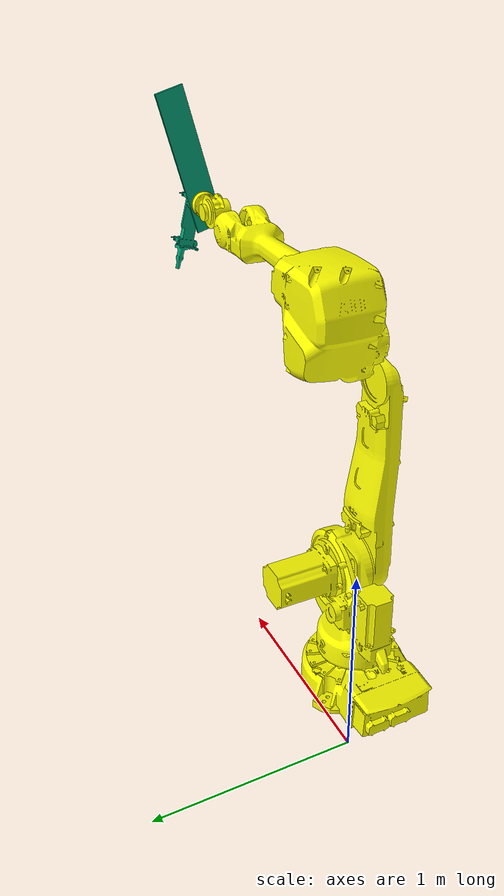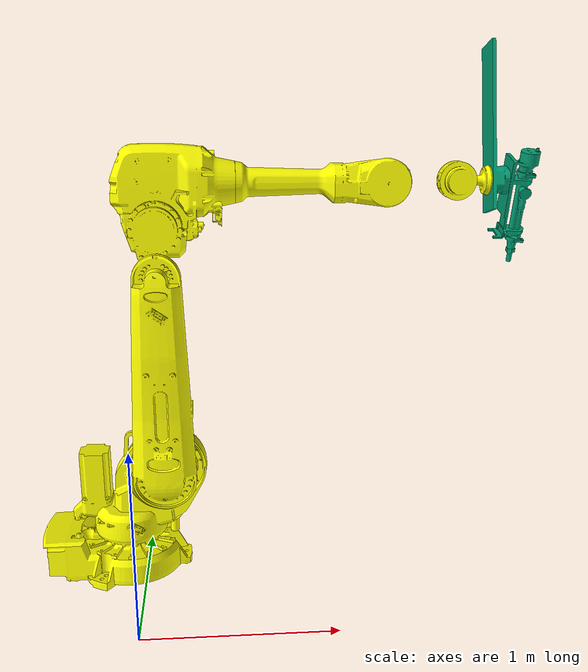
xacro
<?xml version="1.0"?>
<robot xmlns:xacro="http://www.ros.org/wiki/xacro" name="elizabeth">
    <xacro:arg name="initial_positions_file" default="initial_positions.yaml" />

    <!-- Import elizabeth urdf file -->
    <xacro:include filename="$(find elizabeth_description)/urdf/elizabeth.xacro" />

    <!-- Import control_xacro -->
    <xacro:include filename="elizabeth.ros2_control.xacro" />

    <xacro:elizabeth_ros2_control name="FakeSystem" initial_positions_file="$(arg initial_positions_file)"/>

</robot>

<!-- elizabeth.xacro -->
<robot name="elizabeth" xmlns:xacro="http://ros.org/wiki/xacro">

  <xacro:arg name="rws_ip" default="None"/>
  <xacro:arg name="rws_port" default="80"/>

  <xacro:include filename="$(find abb_irb4600_support)/urdf/irb4600_40_255.xacro"/>
  <xacro:include filename="$(find elizabeth_description)/urdf/t25_incl_all.xacro"/>

  <link name="base_footprint"/>
  <joint name="base_footprint_joint" type="fixed">
    <parent link="base_footprint"/>
    <child link="base_link"/>
    <origin xyz="0 0 0.45" rpy="0 0 0"/>
  </joint>
</robot>

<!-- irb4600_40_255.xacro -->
<robot name="abb_irb4600_40_255" xmlns:xacro="http://ros.org/wiki/xacro">
  <xacro:include filename="$(find abb_irb4600_support)/urdf/irb4600_40_255_macro.xacro"/>
  <xacro:abb_irb4600_40_255 prefix=""/>
</robot>

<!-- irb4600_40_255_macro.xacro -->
<robot xmlns:xacro="http://ros.org/wiki/xacro">
  <xacro:macro name="abb_irb4600_40_255" params="prefix">
    <xacro:include filename="$(find abb_resources)/urdf/common_materials.xacro"/>

    <!-- link list -->
    <link name="${prefix}base_link">
      <collision name="collision">
        <geometry>
          <mesh filename="package://abb_irb4600_support/meshes/irb4600/collision/base_link.stl"/>
        </geometry>
        <xacro:material_abb_white/>
      </collision>
      <visual name="visual">
        <geometry>
          <mesh filename="package://abb_irb4600_support/meshes/irb4600/visual/base_link.dae"/>
        </geometry>
        <xacro:material_abb_white/>
        <material name="yellow">
          <color rgba="1 1 0 1"/>
        </material>
      </visual>
    </link>
    <link name="${prefix}link_1">
      <collision name="collision">
        <geometry>
          <mesh filename="package://abb_irb4600_support/meshes/irb4600/collision/link_1.stl"/>
        </geometry>
        <xacro:material_abb_white/>
      </collision>
      <visual name="visual">
        <geometry>
          <mesh filename="package://abb_irb4600_support/meshes/irb4600/visual/link_1.dae"/>
        </geometry>
        <xacro:material_abb_white/>
        <material name="yellow"/>
      </visual>
    </link>
    <link name="${prefix}link_2">
      <collision name="collision">
        <geometry>
          <mesh filename="package://abb_irb4600_support/meshes/irb4600_40_255/collision/link_2.stl"/>
        </geometry>
        <xacro:material_abb_white/>
      </collision>
      <visual name="visual">
        <geometry>
          <mesh filename="package://abb_irb4600_support/meshes/irb4600_40_255/visual/link_2.dae"/>
        </geometry>
        <xacro:material_abb_white/>
        <material name="yellow"/>
      </visual>
    </link>
    <link name="${prefix}link_3">
      <collision name="collision">
        <geometry>
          <mesh filename="package://abb_irb4600_support/meshes/irb4600_40_255/collision/link_3.stl"/>
        </geometry>
        <xacro:material_abb_white/>
      </collision>
      <visual name="visual">
        <geometry>
          <mesh filename="package://abb_irb4600_support/meshes/irb4600_40_255/visual/link_3.dae"/>
        </geometry>
        <xacro:material_abb_white/>
        <material name="yellow"/>
      </visual>
    </link>
    <link name="${prefix}link_4">
      <collision name="collision">
        <geometry>
          <mesh filename="package://abb_irb4600_support/meshes/irb4600_40_255/collision/link_4.stl"/>
        </geometry>
        <xacro:material_abb_white/>
      </collision>
      <visual name="visual">
        <geometry>
          <mesh filename="package://abb_irb4600_support/meshes/irb4600_40_255/visual/link_4.dae"/>
        </geometry>
        <xacro:material_abb_white/>
        <material name="yellow"/>
      </visual>
    </link>
    <link name="${prefix}link_5">
      <collision name="collision">
        <geometry>
          <mesh filename="package://abb_irb4600_support/meshes/irb4600_40_255/collision/link_5.stl"/>
        </geometry>
        <xacro:material_abb_white/>
      </collision>
      <visual name="visual">
        <geometry>
          <mesh filename="package://abb_irb4600_support/meshes/irb4600_40_255/visual/link_5.dae"/>
        </geometry>
        <xacro:material_abb_white/>
        <material name="yellow"/>
      </visual>
    </link>
    <link name="${prefix}link_6">
      <collision name="collision">
        <geometry>
          <mesh filename="package://abb_irb4600_support/meshes/irb4600_40_255/collision/link_6.stl"/>
        </geometry>
        <xacro:material_abb_white/>
      </collision>
      <visual name="visual">
        <geometry>
          <mesh filename="package://abb_irb4600_support/meshes/irb4600_40_255/visual/link_6.dae"/>
        </geometry>
        <xacro:material_abb_white/>
        <material name="yellow"/>
      </visual>
    </link>
    <!-- end of link list -->

    <!-- joint list -->
    <joint type="revolute" name="${prefix}joint_1">
      <origin xyz="0 0 0.495" rpy="0 0 0"/>
      <axis xyz="0 0 1"/>
      <parent link="${prefix}base_link"/>
      <child link="${prefix}link_1"/>
      <limit effort="0" lower="${radians(-180)}" upper="${radians(180)}" velocity="${radians(175)}"/>
    </joint>
    <joint type="revolute" name="${prefix}joint_2">
      <origin xyz="0.175 0 0" rpy="0 0 0"/>
      <axis xyz="0 1 0"/>
      <parent link="${prefix}link_1"/>
      <child link="${prefix}link_2"/>
      <limit effort="0" lower="${radians(-90)}" upper="${radians(150)}" velocity="${radians(175)}"/>
    </joint>
    <joint type="revolute" name="${prefix}joint_3">
      <origin xyz="0 0 1.095" rpy="0 0 0"/>
      <axis xyz="0 1 0"/>
      <parent link="${prefix}link_2"/>
      <child link="${prefix}link_3"/>
      <limit effort="0" lower="${radians(-180)}" upper="${radians(75)}" velocity="${radians(175)}"/>
    </joint>
    <joint type="revolute" name="${prefix}joint_4">
      <origin xyz="0 0 0.175" rpy="0 0 0"/>
      <axis xyz="1 0 0"/>
      <parent link="${prefix}link_3"/>
      <child link="${prefix}link_4"/>
      <limit effort="0" lower="${radians(-400)}" upper="${radians(400)}" velocity="${radians(250)}"/>
    </joint>
    <joint type="revolute" name="${prefix}joint_5">
      <origin xyz="1.270 0 0" rpy="0 0 0"/>
      <axis xyz="0 1 0"/>
      <parent link="${prefix}link_4"/>
      <child link="${prefix}link_5"/>
      <limit effort="0" lower="${radians(-125)}" upper="${radians(120)}" velocity="${radians(250)}"/>
    </joint>
    <joint type="revolute" name="${prefix}joint_6">
      <origin xyz="0.135 0 0" rpy="0 0 0"/>
      <axis xyz="1 0 0"/>
      <parent link="${prefix}link_5"/>
      <child link="${prefix}link_6"/>
      <limit effort="0" lower="${radians(-400)}" upper="${radians(400)}" velocity="${radians(360)}"/>
    </joint>
    <!-- end of joint list -->

    <!-- ROS-Industrial 'base' frame: base_link to ABB World Coordinates transform -->
    <link name="${prefix}base" />
    <joint name="${prefix}base_link-base" type="fixed">
      <origin xyz="0 0 0" rpy="0 0 0"/>
      <parent link="${prefix}base_link"/>
      <child link="${prefix}base"/>
    </joint>

    <!-- ROS-Industrial 'flange' frame: attachment point for EEF models -->
    <link name="${prefix}flange"/>
    <joint type="fixed" name="${prefix}joint_6-flange">
      <origin xyz="0 0 0" rpy="0 0 0"/>
      <parent link="${prefix}link_6"/>
      <child link="${prefix}flange"/>
    </joint>

    <!-- ROS-Industrial 'tool0' frame: all-zeros tool frame -->
    <link name="${prefix}tool0" />
    <joint name="${prefix}link_6-tool0" type="fixed">
      <origin xyz="0 0 0" rpy="0 ${radians(90)} 0" />
      <parent link="${prefix}flange" />
      <child link="${prefix}tool0" />
    </joint>
  </xacro:macro>
</robot>

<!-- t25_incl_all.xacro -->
<robot name="t25_incl_all"
	xmlns:xacro="http://ros.org/wiki/xacro">

  <link name="t25_incl_all">
    <visual>
      <geometry>
        <mesh filename="package://elizabeth_description/urdf/models/t25_incl_all.stl"/>
      </geometry>
      <origin xyz="0 0 0" rpy="0 0 0"/>
    </visual>

    <collision>
      <geometry>
        <mesh filename="package://elizabeth_description/urdf/models/t25_incl_all.stl"/>
      </geometry>
      <origin xyz="0 0 0" rpy="0 0 0"/>
    </collision>
  </link>

  <joint name="tool0_to_t25_incl_all" type="fixed">
    <parent link="tool0"/>
    <child link="t25_incl_all"/>
    <origin xyz="0 0 0" rpy="0 0 0"/>
  </joint>

</robot>
